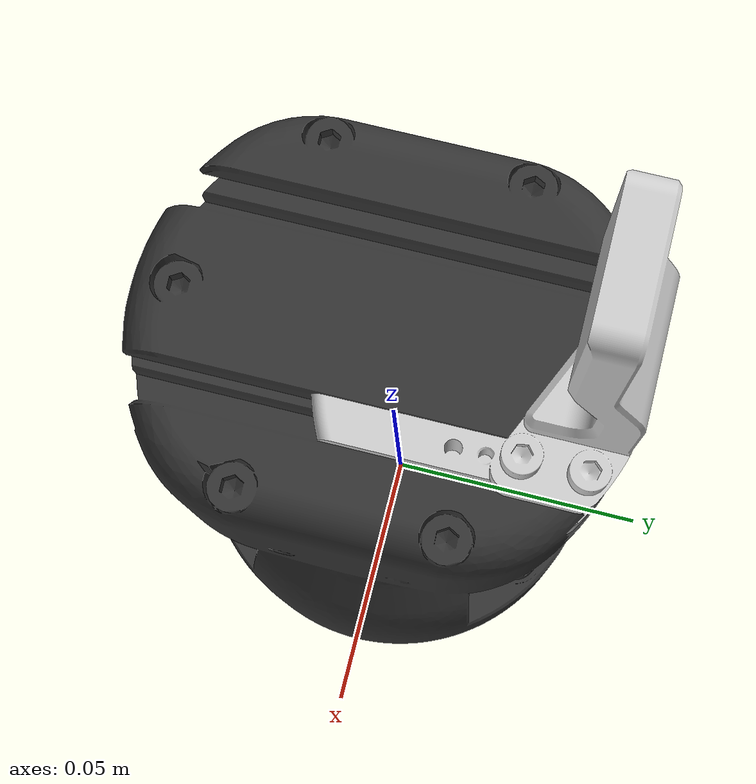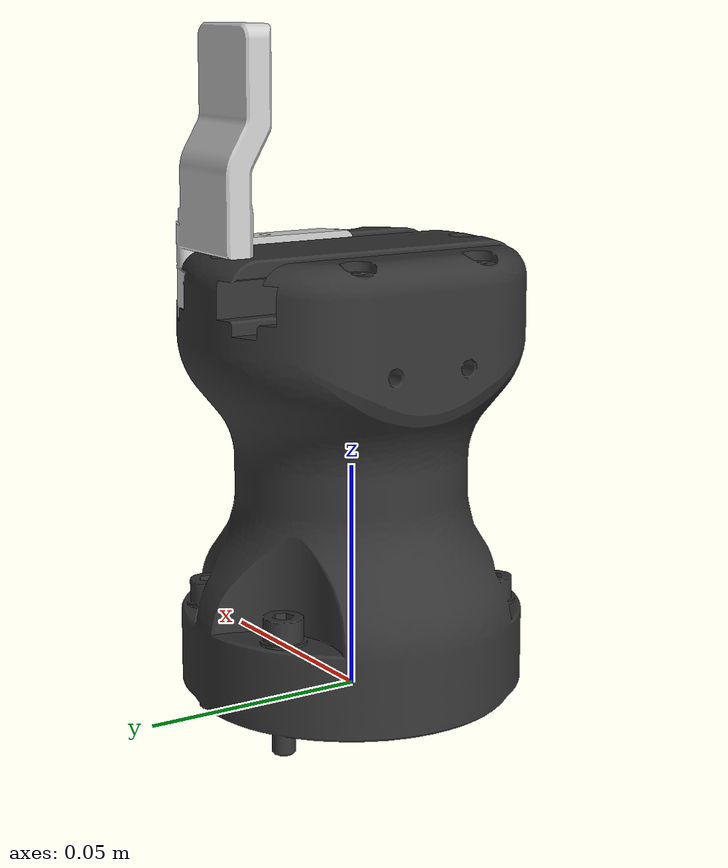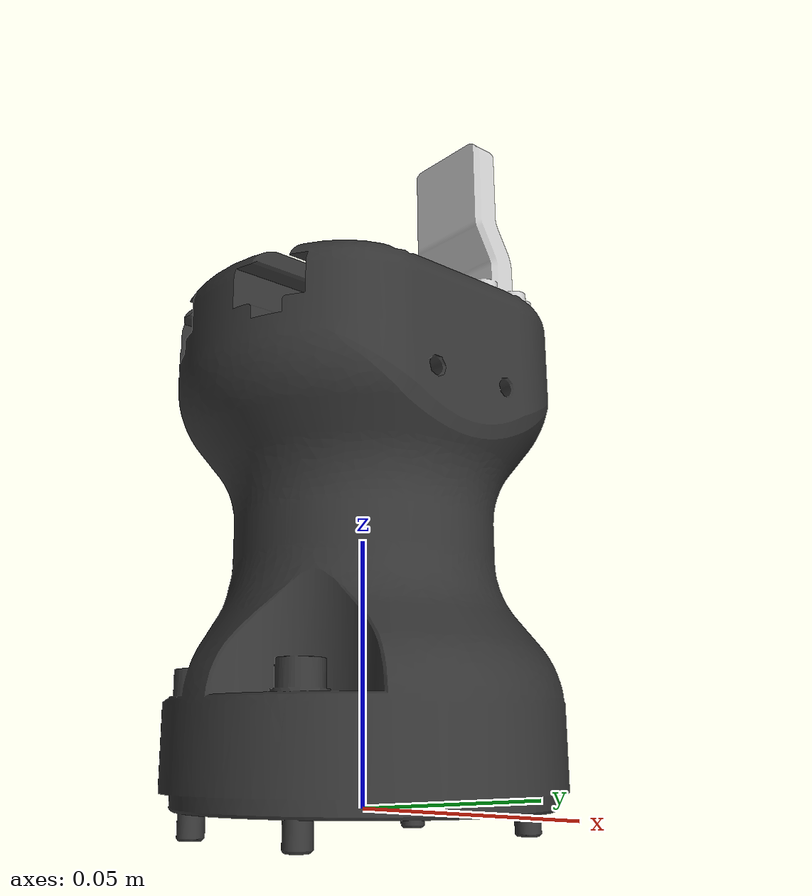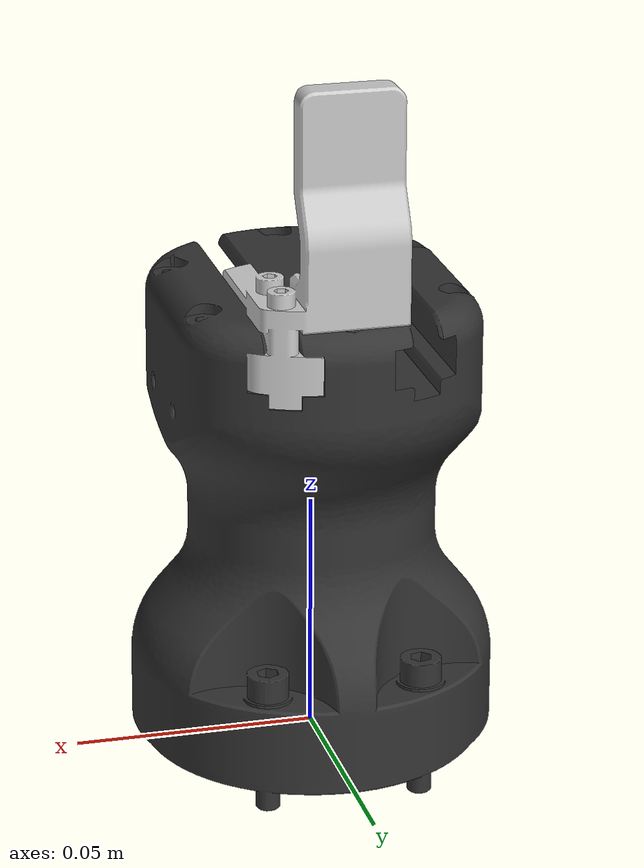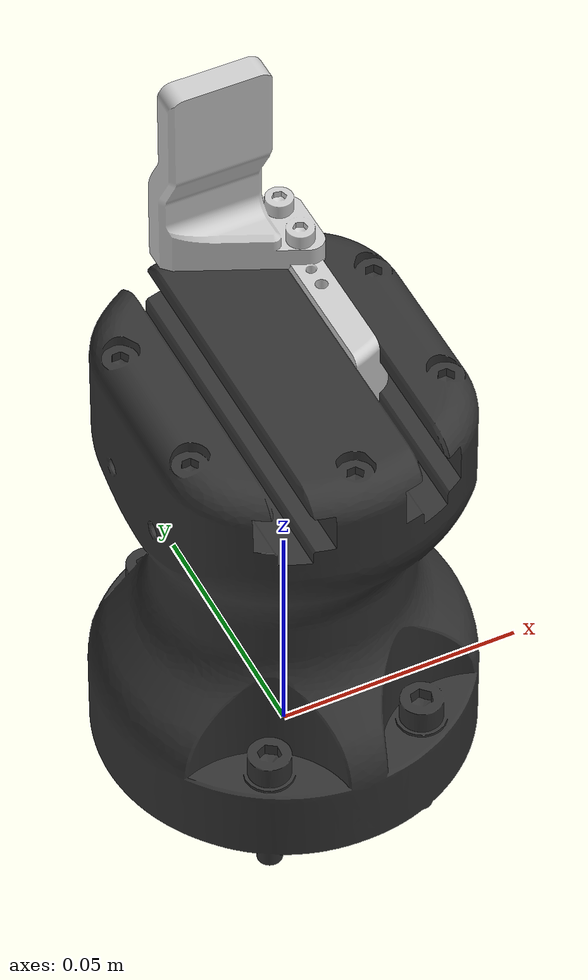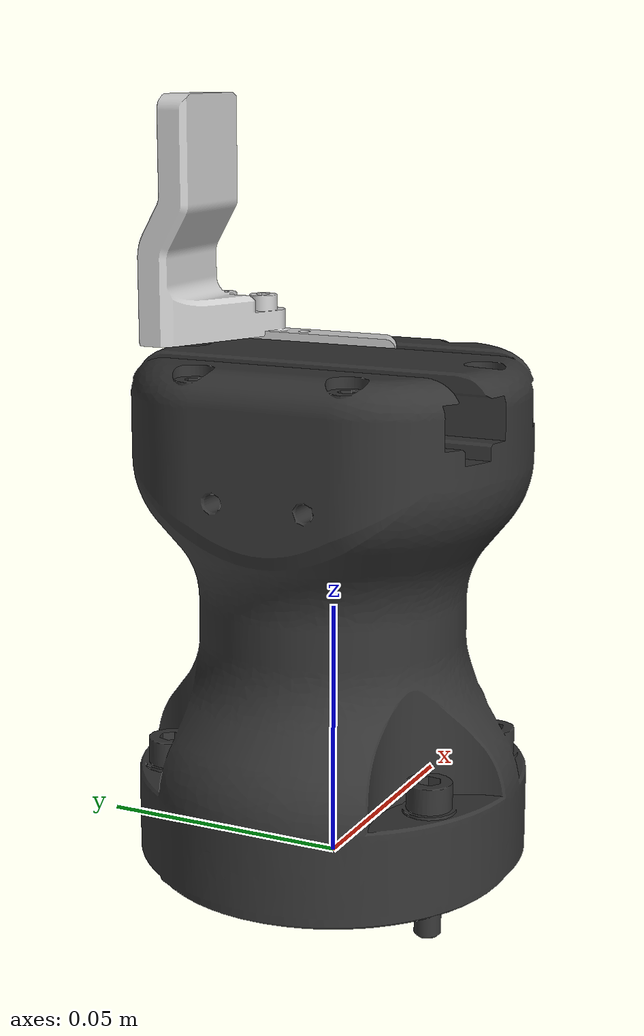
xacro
<?xml version="1.0"?>
<robot name="hande" xmlns:xacro="http://ros.org/wiki/xacro">

  <xacro:arg name="robot_name" default="hande"/>
  <xacro:arg name="mode" default="mock"/>

  <xacro:include filename="$(find hande_description)/ros2_control/hande_system_interface.xacro"/>
  <xacro:include filename="$(find hande_description)/gazebo/hande_gazebo.xacro"/>

  <link name="world" />

  <link name="base_link">
    <inertial>
      <origin rpy="0 0 0" xyz="0 0 0.04607"/>
      <mass value="0.86387"/>
      <inertia ixx="1.22763e-05" iyy="1.22763e-05" izz="1.22763e-05" ixy="0.0" ixz="0.0" iyz="0.0" />
    </inertial>
    <visual>
      <origin xyz="0.0 0.0 0.0" rpy="0.0 0.0 0.0"/>
      <geometry>
        <mesh filename="package://hande_description/meshes/visual/base_link.stl" scale="0.001 0.001 0.001"/>
      </geometry>
      <material name="">
        <color rgba="0.2 0.2 0.2 1" />
      </material>
    </visual>
    <collision>
      <origin xyz="0.0 0.0 0.0" rpy="0.0 0.0 0.0"/>
      <geometry>
        <mesh filename="package://hande_description/meshes/collision/base_link.stl" scale="0.001 0.001 0.001"/>
      </geometry>
    </collision>
  </link>

  <joint name="world_fixed_joint" type="fixed">
    <origin xyz="0.0 0.0 0.0" rpy="0.0 0.0 0.0"/>
    <parent link="world"/>
    <child link="base_link"/>
  </joint>

  <link name="hande_left_finger">
    <inertial>
      <origin rpy="0 0 0" xyz="0.02262 -0.00759 0.00738"/>
      <mass value="0.03804"/>
      <inertia ixx="1.22763e-05" iyy="1.22763e-05" izz="1.22763e-05" ixy="0.0" ixz="0.0" iyz="0.0" />
    </inertial>
    <visual>
      <origin rpy="0 0 0" xyz="0 0 0"/>
      <geometry>
        <mesh filename="package://hande_description/meshes/visual/left_finger.stl" scale="0.001 0.001 0.001"/>
      </geometry>
      <material name="">
        <color rgba="0.8 0.8 0.8 1" />
      </material>
    </visual>
    <collision>
      <origin rpy="0 0 0" xyz="0 0 0"/>
      <geometry>
        <mesh filename="package://hande_description/meshes/collision/left_finger.stl" scale="0.001 0.001 0.001"/>
      </geometry>
    </collision>
  </link>

  <link name="hande_right_finger">
    <inertial>
      <origin rpy="0 0 0" xyz="-0.02262 0.00759 0.00738"/>
      <mass value="0.03804"/>
      <inertia ixx="1.22763e-05" iyy="1.22763e-05" izz="1.22763e-05" ixy="0.0" ixz="0.0" iyz="0.0" />
    </inertial>
    <visual>
      <origin rpy="0 0 0" xyz="0 0 0"/>
      <geometry>
        <mesh filename="package://hande_description/meshes/visual/right_finger.stl" scale="0.001 0.001 0.001"/>
      </geometry>
      <material name="">
        <color rgba="0.8 0.8 0.8 1" />
      </material>
    </visual>
    <collision>
      <origin rpy="0 0 0" xyz="0 0 0"/>
      <geometry>
        <mesh filename="package://hande_description/meshes/collision/right_finger.stl" scale="0.001 0.001 0.001"/>
      </geometry>
    </collision>
  </link>

  <joint name="hande_left_finger_joint" type="prismatic">
    <origin rpy="0 0 0" xyz="0 0 0"/>
    <parent link="base_link"/>
    <child link="hande_left_finger"/>
    <axis xyz="0 -1 0"/>
    <limit effort="130" lower="0" upper="0.025" velocity="0.15"/>
  </joint>

  <joint name="hande_right_finger_joint" type="prismatic">
    <origin rpy="0 0 0" xyz="0 0 0"/>
    <parent link="base_link"/>
    <child link="hande_right_finger"/>
    <axis xyz="0 1 0"/>
    <limit effort="130" lower="0" upper="0.025" velocity="0.15"/>
    <mimic joint="hande_left_finger_joint" multiplier="1" offset="0"/>
  </joint>

  <xacro:hande_gazebo robot_name="$(arg robot_name)"/>

  <xacro:hande_system_interface
      robot_name="$(arg robot_name)"
      mode="$(arg mode)"/>

</robot>
